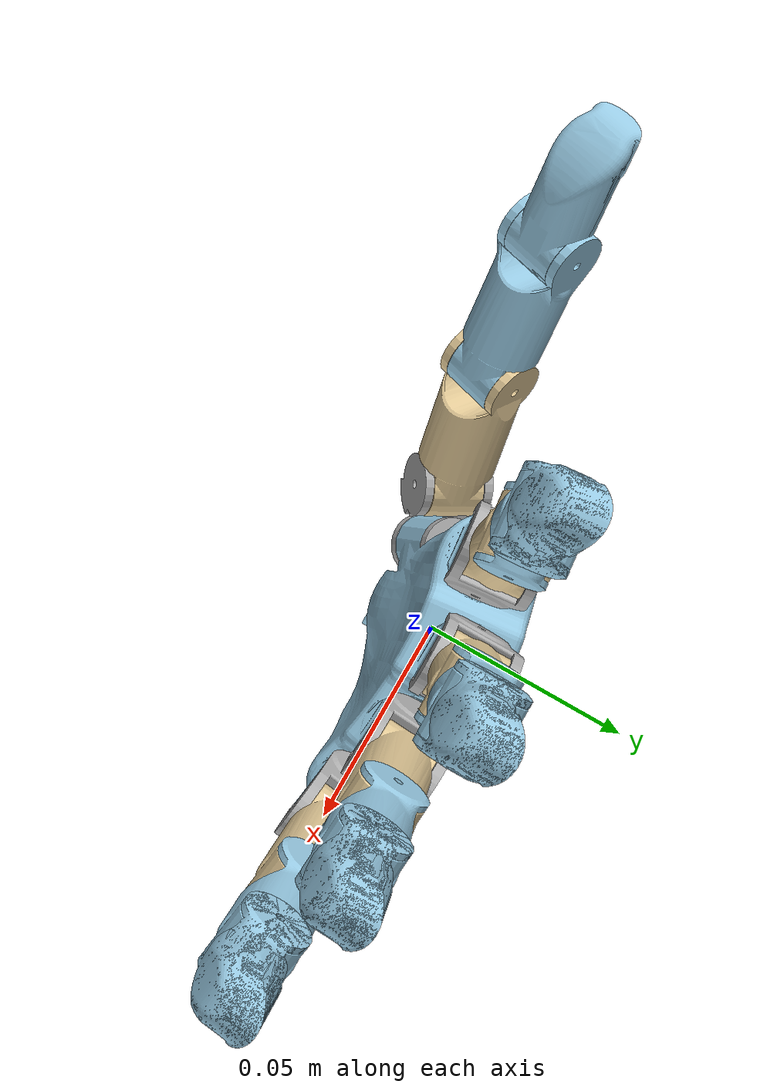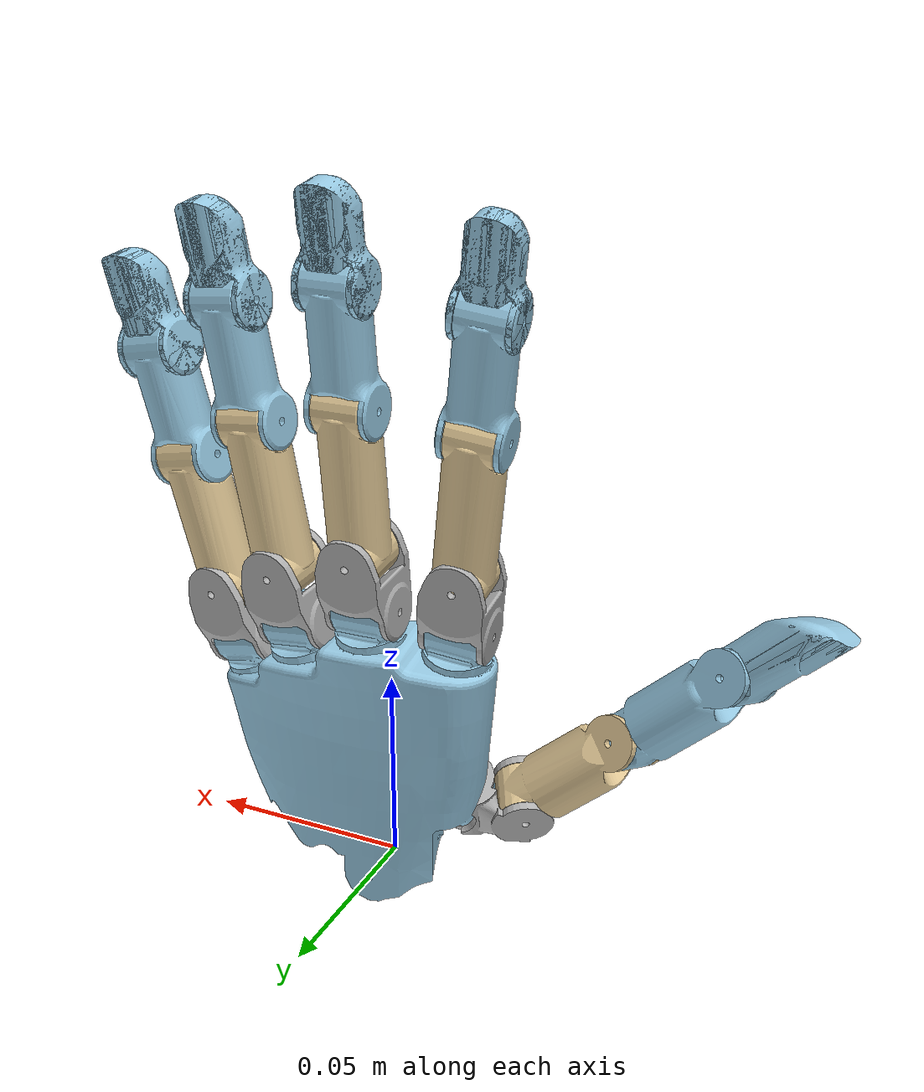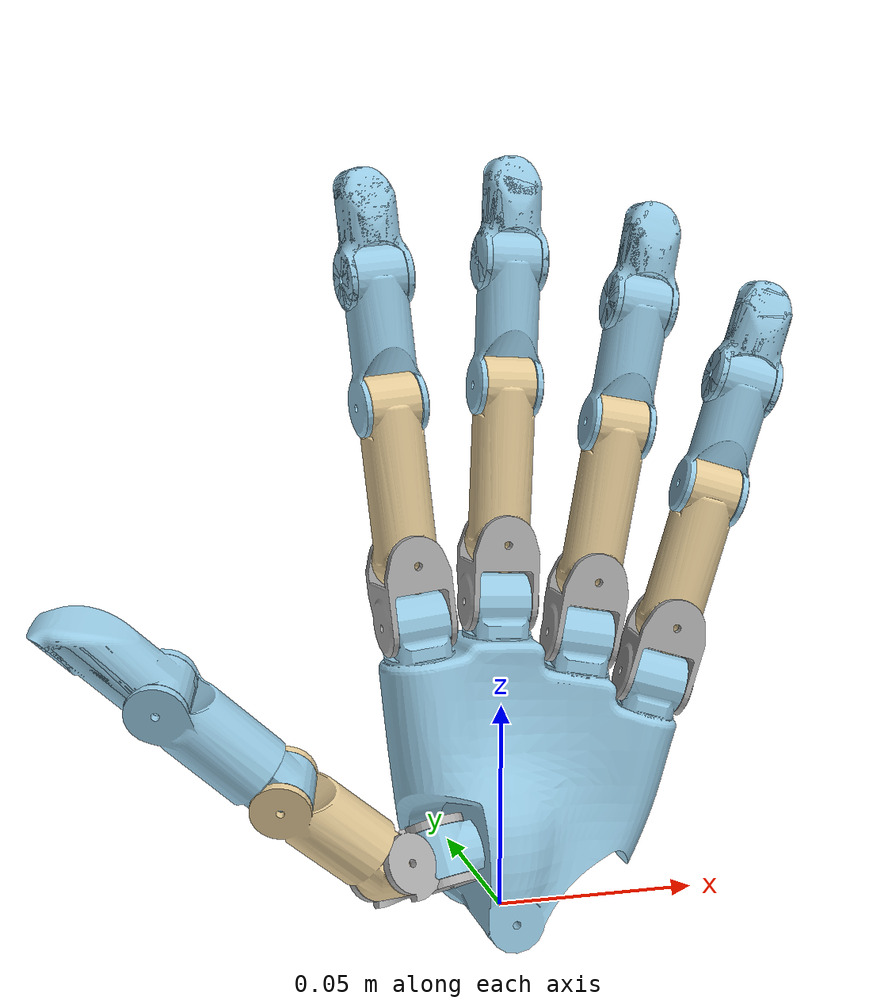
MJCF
<mujoco model="wujihand-left">
  <compiler angle="radian" meshdir="../meshes/left/" />

  <option jacobian="sparse" integrator="RK4" timestep="0.002" solver="Newton" iterations="50" tolerance="1e-10" /><default><joint armature="0.0002" damping="0.0" /></default><asset>
    <mesh name="l_wrist" content_type="model/stl" file="l_wrist.STL" />
    <mesh name="l_thumb_proximal" content_type="model/stl" file="l_thumb_proximal.STL" />
    <mesh name="l_thumb_proximal_abd" content_type="model/stl" file="l_thumb_proximal_abd.STL" />
    <mesh name="l_thumb_middle" content_type="model/stl" file="l_thumb_middle.STL" />
    <mesh name="l_thumb_distal" content_type="model/stl" file="l_thumb_distal.STL" />
    <mesh name="l_thumb_tip" content_type="model/stl" file="l_thumb_tip.STL" />
    <mesh name="l_index_finger_proximal" content_type="model/stl" file="l_index_finger_proximal.STL" />
    <mesh name="l_index_finger_proximal_abd" content_type="model/stl" file="l_index_finger_proximal_abd.STL" />
    <mesh name="l_index_finger_middle" content_type="model/stl" file="l_index_finger_middle.STL" />
    <mesh name="l_index_finger_distal" content_type="model/stl" file="l_index_finger_distal.STL" />
    <mesh name="l_index_finger_tip" content_type="model/stl" file="l_index_finger_tip.STL" />
    <mesh name="l_middle_finger_proximal" content_type="model/stl" file="l_middle_finger_proximal.STL" />
    <mesh name="l_middle_finger_proximal_abd" content_type="model/stl" file="l_middle_finger_proximal_abd.STL" />
    <mesh name="l_middle_finger_middle" content_type="model/stl" file="l_middle_finger_middle.STL" />
    <mesh name="l_middle_finger_distal" content_type="model/stl" file="l_middle_finger_distal.STL" />
    <mesh name="l_middle_finger_tip" content_type="model/stl" file="l_middle_finger_tip.STL" />
    <mesh name="l_ring_finger_proximal" content_type="model/stl" file="l_ring_finger_proximal.STL" />
    <mesh name="l_ring_finger_proximal_abd" content_type="model/stl" file="l_ring_finger_proximal_abd.STL" />
    <mesh name="l_ring_finger_middle" content_type="model/stl" file="l_ring_finger_middle.STL" />
    <mesh name="l_ring_finger_distal" content_type="model/stl" file="l_ring_finger_distal.STL" />
    <mesh name="l_ring_finger_tip" content_type="model/stl" file="l_ring_finger_tip.STL" />
    <mesh name="l_pinky_proximal" content_type="model/stl" file="l_pinky_proximal.STL" />
    <mesh name="l_pinky_proximal_abd" content_type="model/stl" file="l_pinky_proximal_abd.STL" />
    <mesh name="l_pinky_middle" content_type="model/stl" file="l_pinky_middle.STL" />
    <mesh name="l_pinky_distal" content_type="model/stl" file="l_pinky_distal.STL" />
    <mesh name="l_pinky_tip" content_type="model/stl" file="l_pinky_tip.STL" />
  </asset>

  <worldbody>
    <body name="l_base"><inertial pos="0.00464906657736 0.00350268157047 0.035514253197" mass="0.16914" quat="0.08877167 0.69431677 0.71378173 0.02365290" diaginertia="1.13546004e-04 7.26656655e-05 5.63417832e-05" /><geom quat="0 1 0 0" type="mesh" contype="0" conaffinity="0" group="1" density="0" rgba="0.6 0.8 0.9 1" mesh="l_wrist" />
    <geom quat="0 1 0 0" type="mesh" rgba="0.6 0.8 0.9 1" mesh="l_wrist" contype="1" conaffinity="1" />
    <body name="l_thumb_proximal" pos="-0.01666 -0.0081297 0.017017" quat="-0.709621 0.286757 -0.641142 0.0560762">
      <inertial pos="0.000791225 0.00178311 -0.00701986" quat="0.936928 0.0292296 -0.0818877 0.338536" mass="0.0075" diaginertia="5.88317e-07 5.60245e-07 4.46152e-07" />
      <joint name="l_thumb_cmc_flex" pos="0 0 0" axis="-1 0 0" range="-1.187 1.291" actuatorfrcrange="-0.6 0.6" armature="0.0005" />
      <geom type="mesh" contype="0" conaffinity="0" group="1" density="0" rgba="0.7 0.7 0.7 1" mesh="l_thumb_proximal" />
      <geom type="mesh" rgba="0.7 0.7 0.7 1" mesh="l_thumb_proximal" contype="0" conaffinity="0" />
      <body name="l_thumb_proximal_abd" pos="0.00025789 0.00063167 -0.014161" quat="0.934711 -0.0919289 0.342519 0.0233666">
        <inertial pos="1.22552e-05 -4.92144e-06 -0.0135605" quat="0.846494 -0.0022293 -0.00121984 0.532392" mass="0.0248" diaginertia="3.23916e-06 3.13503e-06 9.13223e-07" />
        <joint name="l_thumb_cmc_abd" pos="0 0 0" axis="0 1 0" range="-1.484 0.698" actuatorfrcrange="-0.6 0.6" armature="0.0005" />
        <geom type="mesh" contype="0" conaffinity="0" group="1" density="0" rgba="0.9 0.8 0.6 1" mesh="l_thumb_proximal_abd" />
        <geom type="mesh" rgba="0.9 0.8 0.6 1" mesh="l_thumb_proximal_abd" contype="2" conaffinity="2" />
        <body name="l_thumb_middle" pos="-4.3136e-05 2.4905e-05 -0.033496" quat="0.965006 0.0112895 0.0421329 -0.258573">
          <inertial pos="-2.70399e-07 -1.7747e-07 -0.0148152" quat="0.706187 1.46548e-06 8.62296e-06 0.708025" mass="0.0165" diaginertia="2.35726e-06 2.30828e-06 6.12078e-07" />
          <joint name="l_thumb_mcp" pos="0 0 0" axis="-1 0 0" range="-1.047 1.57" actuatorfrcrange="-0.3 0.3" />
          <geom type="mesh" contype="0" conaffinity="0" group="1" density="0" rgba="0.6 0.8 0.9 1" mesh="l_thumb_middle" />
          <geom type="mesh" rgba="0.6 0.8 0.9 1" mesh="l_thumb_middle" contype="1" conaffinity="1" />
          <body name="l_thumb_distal" pos="0 0 -0.036">
            <inertial pos="-6.28894e-05 7.75172e-05 -0.0109189" quat="0.975066 0.0348132 0.0182874 -0.218402" mass="0.0206" diaginertia="2.18471e-06 2.17337e-06 5.56902e-07" />
            <joint name="l_thumb_ip" pos="0 0 0" axis="-1 0 0" range="-1.047 1.57" actuatorfrcrange="-0.3 0.3" />
            <geom type="mesh" contype="0" conaffinity="0" group="1" density="0" rgba="0.6 0.8 0.9 1" mesh="l_thumb_distal" />
            <geom type="mesh" rgba="0.6 0.8 0.9 1" mesh="l_thumb_distal" contype="1" conaffinity="1" />
            <geom pos="0 0.00031573 -0.027701" quat="-3.6683e-06 1.89747e-07 -0.051657 0.998665" type="mesh" contype="0" conaffinity="0" group="1" density="0" rgba="0.6 0.8 0.9 1" mesh="l_thumb_tip" />
            <geom pos="0 0.00031573 -0.027701" quat="-3.6683e-06 1.89747e-07 -0.051657 0.998665" type="mesh" rgba="0.6 0.8 0.9 1" mesh="l_thumb_tip" contype="1" conaffinity="1" />
          </body>
        </body>
      </body>
    </body>
    <body name="l_index_finger_proximal" pos="-0.020353 0.0033601 0.070679" quat="-0.0530009 0.0489857 -0.997267 0.0158347">
      <inertial pos="-1.83202e-09 0.00178137 -0.00760139" quat="0.999275 0.0380628 0 0" mass="0.0032" diaginertia="2.53706e-07 2.50651e-07 2.17493e-07" />
      <joint name="l_index_finger_mcp_flex" pos="0 0 0" axis="-1 0 0" range="-1.047 1.57" actuatorfrcrange="-2 2" armature="0.0005" />
      <geom type="mesh" contype="0" conaffinity="0" group="1" density="0" rgba="0.7 0.7 0.7 1" mesh="l_index_finger_proximal" />
      <geom type="mesh" rgba="0.7 0.7 0.7 1" mesh="l_index_finger_proximal" contype="0" conaffinity="0" />
      <body name="l_index_finger_proximal_abd" pos="0 0.001201 -0.0145">
        <inertial pos="-8.04735e-08 -7.30405e-07 -0.0187994" quat="0.983237 1.60594e-05 -3.84548e-06 0.18233" mass="0.033" diaginertia="6.82962e-06 6.82929e-06 8.90202e-07" />
        <joint name="l_index_finger_mcp_abd" pos="0 0 0" axis="0 1 0" range="-0.698 0.698" actuatorfrcrange="-0.2 0.2" />
        <geom type="mesh" contype="0" conaffinity="0" group="1" density="0" rgba="0.9 0.8 0.6 1" mesh="l_index_finger_proximal_abd" />
        <geom type="mesh" rgba="0.9 0.8 0.6 1" mesh="l_index_finger_proximal_abd" contype="2" conaffinity="2" />
        <body name="l_index_finger_middle" pos="0 0 -0.0376">
          <inertial pos="5.07335e-08 0.000247887 -0.0190348" quat="0.707235 -0.0108069 0.0107958 0.706814" mass="0.0165" diaginertia="1.92861e-06 1.87201e-06 5.07825e-07" />
          <joint name="l_index_finger_pip" pos="0 0 0" axis="-1 0 0" range="-1.047 2.094" actuatorfrcrange="-0.3 0.3" />
          <geom type="mesh" contype="0" conaffinity="0" group="1" density="0" rgba="0.6 0.8 0.9 1" mesh="l_index_finger_middle" />
          <geom type="mesh" rgba="0.6 0.8 0.9 1" mesh="l_index_finger_middle" contype="1" conaffinity="1" />
          <body name="l_index_finger_distal" pos="0 0 -0.0295">
            <inertial pos="-0.000309785 0.00180539 -0.0114392" quat="0.719554 0.0750724 -0.0644902 0.687348" mass="0.01718" diaginertia="1.37358e-06 1.26339e-06 5.15141e-07" />
            <joint name="l_index_finger_dip" pos="0 0 0" axis="-1 0 0" range="-1.047 1.57" actuatorfrcrange="-0.3 0.3" />
            <geom type="mesh" contype="0" conaffinity="0" group="1" density="0" rgba="0.6 0.8 0.9 1" mesh="l_index_finger_distal" />
            <geom type="mesh" rgba="0.6 0.8 0.9 1" mesh="l_index_finger_distal" contype="1" conaffinity="1" />
            <geom pos="0 0.0016722 -0.025" quat="1 0 0 0" type="mesh" contype="0" conaffinity="0" group="1" density="0" rgba="0.6 0.8 0.9 1" mesh="l_index_finger_tip" />
            <geom pos="0 0.0016722 -0.025" quat="1 0 0 0" type="mesh" rgba="0.6 0.8 0.9 1" mesh="l_index_finger_tip" contype="1" conaffinity="1" />
          </body>
        </body>
      </body>
    </body>
    <body name="l_middle_finger_proximal" pos="0.0014735 0.0083399 0.073903" quat="-0.021927 -3.12917e-05 0.999612 -0.0172059">
      <inertial pos="-1.83202e-09 0.00178137 -0.00760139" quat="0.999275 0.0380628 0 0" mass="0.0032" diaginertia="2.53706e-07 2.50651e-07 2.17493e-07" />
      <joint name="l_middle_finger_mcp_flex" pos="0 0 0" axis="-1 0 0" range="-1.047 1.57" actuatorfrcrange="-2 2" armature="0.0005" />
      <geom type="mesh" contype="0" conaffinity="0" group="1" density="0" rgba="0.7 0.7 0.7 1" mesh="l_middle_finger_proximal" />
      <geom type="mesh" rgba="0.7 0.7 0.7 1" mesh="l_middle_finger_proximal" contype="0" conaffinity="0" />
      <body name="l_middle_finger_proximal_abd" pos="0 0.001201 -0.0145">
        <inertial pos="-8.04735e-08 -7.30405e-07 -0.0187994" quat="0.983237 1.60594e-05 -3.84548e-06 0.18233" mass="0.033" diaginertia="6.82962e-06 6.82929e-06 8.90202e-07" />
        <joint name="l_middle_finger_mcp_abd" pos="0 0 0" axis="0 1 0" range="-0.698 0.698" actuatorfrcrange="-0.2 0.2" />
        <geom type="mesh" contype="0" conaffinity="0" group="1" density="0" rgba="0.9 0.8 0.6 1" mesh="l_middle_finger_proximal_abd" />
        <geom type="mesh" rgba="0.9 0.8 0.6 1" mesh="l_middle_finger_proximal_abd" contype="2" conaffinity="2" />
        <body name="l_middle_finger_middle" pos="0 0 -0.0376">
          <inertial pos="5.07335e-08 0.000247887 -0.0190348" quat="0.707235 -0.0108069 0.0107958 0.706814" mass="0.0165" diaginertia="1.92861e-06 1.87201e-06 5.07825e-07" />
          <joint name="l_middle_finger_pip" pos="0 0 0" axis="-1 0 0" range="-1.047 2.094" actuatorfrcrange="-0.3 0.3" />
          <geom type="mesh" contype="0" conaffinity="0" group="1" density="0" rgba="0.6 0.8 0.9 1" mesh="l_middle_finger_middle" />
          <geom type="mesh" rgba="0.6 0.8 0.9 1" mesh="l_middle_finger_middle" contype="1" conaffinity="1" />
          <body name="l_middle_finger_distal" pos="0 0 -0.0295">
            <inertial pos="-0.000309785 0.00180539 -0.0114392" quat="0.719554 0.0750724 -0.0644902 0.687348" mass="0.01718" diaginertia="1.37358e-06 1.26339e-06 5.15141e-07" />
            <joint name="l_middle_finger_dip" pos="0 0 0" axis="-1 0 0" range="-1.047 1.57" actuatorfrcrange="-0.3 0.3" />
            <geom type="mesh" contype="0" conaffinity="0" group="1" density="0" rgba="0.6 0.8 0.9 1" mesh="l_middle_finger_distal" />
            <geom type="mesh" rgba="0.6 0.8 0.9 1" mesh="l_middle_finger_distal" contype="1" conaffinity="1" />
            <geom pos="0 0.0016722 -0.025" quat="1 0 0 0" type="mesh" contype="0" conaffinity="0" group="1" density="0" rgba="0.6 0.8 0.9 1" mesh="l_middle_finger_tip" />
            <geom pos="0 0.0016722 -0.025" quat="1 0 0 0" type="mesh" rgba="0.6 0.8 0.9 1" mesh="l_middle_finger_tip" contype="1" conaffinity="1" />
          </body>
        </body>
      </body>
    </body>
    <body name="l_ring_finger_proximal" pos="0.021879 0.0056256 0.064714" quat="-0.0873369 0.0334119 0.995596 -0.00668093">
      <inertial pos="-1.83202e-09 0.00178137 -0.00760139" quat="0.999275 0.0380628 0 0" mass="0.0032" diaginertia="2.53706e-07 2.50651e-07 2.17493e-07" />
      <joint name="l_ring_finger_mcp_flex" pos="0 0 0" axis="-1 0 0" range="-1.047 1.57" actuatorfrcrange="-2 2" armature="0.0005" />
      <geom type="mesh" contype="0" conaffinity="0" group="1" density="0" rgba="0.7 0.7 0.7 1" mesh="l_ring_finger_proximal" />
      <geom type="mesh" rgba="0.7 0.7 0.7 1" mesh="l_ring_finger_proximal" contype="0" conaffinity="0" />
      <body name="l_ring_finger_proximal_abd" pos="0 0.001201 -0.0145">
        <inertial pos="-8.04735e-08 -7.30405e-07 -0.0187994" quat="0.983237 1.60594e-05 -3.84548e-06 0.18233" mass="0.033" diaginertia="6.82962e-06 6.82929e-06 8.90202e-07" />
        <joint name="l_ring_finger_mcp_abd" pos="0 0 0" axis="0 1 0" range="-0.698 0.698" actuatorfrcrange="-0.2 0.2" />
        <geom type="mesh" contype="0" conaffinity="0" group="1" density="0" rgba="0.9 0.8 0.6 1" mesh="l_ring_finger_proximal_abd" />
        <geom type="mesh" rgba="0.9 0.8 0.6 1" mesh="l_ring_finger_proximal_abd" contype="2" conaffinity="2" />
        <body name="l_ring_finger_middle" pos="0 0 -0.0376">
          <inertial pos="5.07335e-08 0.000247887 -0.0190348" quat="0.707235 -0.0108069 0.0107958 0.706814" mass="0.0165" diaginertia="1.92861e-06 1.87201e-06 5.07825e-07" />
          <joint name="l_ring_finger_pip" pos="0 0 0" axis="-1 0 0" range="-1.047 2.094" actuatorfrcrange="-0.3 0.3" />
          <geom type="mesh" contype="0" conaffinity="0" group="1" density="0" rgba="0.6 0.8 0.9 1" mesh="l_ring_finger_middle" />
          <geom type="mesh" rgba="0.6 0.8 0.9 1" mesh="l_ring_finger_middle" contype="1" conaffinity="1" />
          <body name="l_ring_finger_distal" pos="0 0 -0.0295">
            <inertial pos="-0.000309785 0.00180539 -0.0114392" quat="0.719554 0.0750724 -0.0644902 0.687348" mass="0.01718" diaginertia="1.37358e-06 1.26339e-06 5.15141e-07" />
            <joint name="l_ring_finger_dip" pos="0 0 0" axis="-1 0 0" range="-1.047 1.57" actuatorfrcrange="-0.3 0.3" />
            <geom type="mesh" contype="0" conaffinity="0" group="1" density="0" rgba="0.6 0.8 0.9 1" mesh="l_ring_finger_distal" />
            <geom type="mesh" rgba="0.6 0.8 0.9 1" mesh="l_ring_finger_distal" contype="1" conaffinity="1" />
            <geom pos="0 0.0016722 -0.025" quat="1 0 0 0" type="mesh" contype="0" conaffinity="0" group="1" density="0" rgba="0.6 0.8 0.9 1" mesh="l_ring_finger_tip" />
            <geom pos="0 0.0016722 -0.025" quat="1 0 0 0" type="mesh" rgba="0.6 0.8 0.9 1" mesh="l_ring_finger_tip" contype="1" conaffinity="1" />
          </body>
        </body>
      </body>
    </body>
    <body name="l_pinky_proximal" pos="0.039145 0.00076138 0.054041" quat="-0.14036 0.0669174 0.987834 0.00224079">
      <inertial pos="2.12813e-07 0.00178136 -0.00760145" quat="0.999275 0.0380616 -2.02315e-05 -7.70603e-07" mass="0.0032" diaginertia="2.537e-07 2.50649e-07 2.17493e-07" />
      <joint name="l_pinky_mcp_flex" pos="0 0 0" axis="-1 0 0" range="-1.047 1.57" actuatorfrcrange="-2 2" armature="0.0005" />
      <geom type="mesh" contype="0" conaffinity="0" group="1" density="0" rgba="0.7 0.7 0.7 1" mesh="l_pinky_proximal" />
      <geom type="mesh" rgba="0.7 0.7 0.7 1" mesh="l_pinky_proximal" contype="0" conaffinity="0" />
      <body name="l_pinky_proximal_abd" pos="0 0.001201 -0.0145">
        <inertial pos="-1.55648e-06 -5.45405e-07 -0.016785" quat="0.762165 7.76805e-06 -3.02125e-05 0.647383" mass="0.033" diaginertia="5.84029e-06 5.83952e-06 8.87646e-07" />
        <joint name="l_pinky_mcp_abd" pos="0 0 0" axis="0 1 0" range="-0.698 0.698" actuatorfrcrange="-0.2 0.2" />
        <geom type="mesh" contype="0" conaffinity="0" group="1" density="0" rgba="0.9 0.8 0.6 1" mesh="l_pinky_proximal_abd" />
        <geom type="mesh" rgba="0.9 0.8 0.6 1" mesh="l_pinky_proximal_abd" contype="2" conaffinity="2" />
        <body name="l_pinky_middle" pos="-0.0001 0 -0.0336">
          <inertial pos="3.23236e-07 0.000264491 -0.0178807" quat="0.707241 -0.0112918 0.0112863 0.706792" mass="0.0165" diaginertia="1.8076e-06 1.74345e-06 5.13353e-07" />
          <joint name="l_pinky_pip" pos="0 0 0" axis="-1 0 0" range="-1.047 2.094" actuatorfrcrange="-0.3 0.3" />
          <geom type="mesh" contype="0" conaffinity="0" group="1" density="0" rgba="0.6 0.8 0.9 1" mesh="l_pinky_middle" />
          <geom type="mesh" rgba="0.6 0.8 0.9 1" mesh="l_pinky_middle" contype="1" conaffinity="1" />
          <body name="l_pinky_distal" pos="0 0 -0.0275">
            <inertial pos="-0.00030939 0.000750236 -0.0120757" quat="0.717842 0.0379403 -0.0367939 0.694197" mass="0.01718" diaginertia="1.25451e-06 1.12901e-06 5.30937e-07" />
            <joint name="l_pinky_dip" pos="0 0 0" axis="-1 0 0" range="-1.047 1.57" actuatorfrcrange="-0.3 0.3" />
            <geom type="mesh" contype="0" conaffinity="0" group="1" density="0" rgba="0.6 0.8 0.9 1" mesh="l_pinky_distal" />
            <geom type="mesh" rgba="0.6 0.8 0.9 1" mesh="l_pinky_distal" contype="1" conaffinity="1" />
            <geom pos="0 0.0016722 -0.025" quat="1 0 0 0" type="mesh" contype="0" conaffinity="0" group="1" density="0" rgba="0.6 0.8 0.9 1" mesh="l_pinky_tip" />
            <geom pos="0 0.0016722 -0.025" quat="1 0 0 0" type="mesh" rgba="0.6 0.8 0.9 1" mesh="l_pinky_tip" contype="1" conaffinity="1" />
          </body>
        </body>
      </body>
    </body>
  </body></worldbody>
<actuator>
    <position name="left_finger1_joint1_actuator" joint="l_thumb_cmc_flex" kp="0.40844710645048043" kv="0.020882010257063675" ctrlrange="-1.187 1.291" forcerange="-0.6 0.6" />
    <position name="left_finger1_joint2_actuator" joint="l_thumb_cmc_abd" kp="0.6858601063643346" kv="0.030610939996373314" ctrlrange="-1.484 0.698" forcerange="-0.6 0.6" />
    <position name="left_finger1_joint3_actuator" joint="l_thumb_mcp" kp="0.2391112196099482" kv="0.010181475050560962" ctrlrange="-1.047 1.57" forcerange="-0.3 0.3" />
    <position name="left_finger1_joint4_actuator" joint="l_thumb_ip" kp="0.20736128319711747" kv="0.00909698844675045" ctrlrange="-1.047 1.57" forcerange="-0.3 0.3" />
    <position name="left_finger2_joint1_actuator" joint="l_index_finger_mcp_flex" kp="0.37352218155860073" kv="0.01882274330029718" ctrlrange="-1.047 1.57" forcerange="-2 2" />
    <position name="left_finger2_joint2_actuator" joint="l_index_finger_mcp_abd" kp="0.45592448909027794" kv="0.019798167597016643" ctrlrange="-0.698 0.698" forcerange="-0.2 0.2" />
    <position name="left_finger2_joint3_actuator" joint="l_index_finger_pip" kp="0.24368366649522863" kv="0.010477031953162727" ctrlrange="-1.047 2.094" forcerange="-0.3 0.3" />
    <position name="left_finger2_joint4_actuator" joint="l_index_finger_dip" kp="0.18026971340925335" kv="0.008240212147903584" ctrlrange="-1.047 1.57" forcerange="-0.3 0.3" />
    <position name="left_finger3_joint1_actuator" joint="l_middle_finger_mcp_flex" kp="0.3687093483646485" kv="0.01848622487024593" ctrlrange="-1.047 1.57" forcerange="-2 2" />
    <position name="left_finger3_joint2_actuator" joint="l_middle_finger_mcp_abd" kp="0.4164253443634641" kv="0.018032947229953678" ctrlrange="-0.698 0.698" forcerange="-0.2 0.2" />
    <position name="left_finger3_joint3_actuator" joint="l_middle_finger_pip" kp="0.22218607502059182" kv="0.009592200014076666" ctrlrange="-1.047 2.094" forcerange="-0.3 0.3" />
    <position name="left_finger3_joint4_actuator" joint="l_middle_finger_dip" kp="0.19427606072023446" kv="0.009152994605972402" ctrlrange="-1.047 1.57" forcerange="-0.3 0.3" />
    <position name="left_finger4_joint1_actuator" joint="l_ring_finger_mcp_flex" kp="0.35718151495111794" kv="0.018376606800780005" ctrlrange="-1.047 1.57" forcerange="-2 2" />
    <position name="left_finger4_joint2_actuator" joint="l_ring_finger_mcp_abd" kp="0.42977315313086895" kv="0.01867700966212433" ctrlrange="-0.698 0.698" forcerange="-0.2 0.2" />
    <position name="left_finger4_joint3_actuator" joint="l_ring_finger_pip" kp="0.24930151196247122" kv="0.01059512121009555" ctrlrange="-1.047 2.094" forcerange="-0.3 0.3" />
    <position name="left_finger4_joint4_actuator" joint="l_ring_finger_dip" kp="0.2285032688178066" kv="0.009917602877441107" ctrlrange="-1.047 1.57" forcerange="-0.3 0.3" />
    <position name="left_finger5_joint1_actuator" joint="l_pinky_mcp_flex" kp="0.3655325975433942" kv="0.018616960278988272" ctrlrange="-1.047 1.57" forcerange="-2 2" />
    <position name="left_finger5_joint2_actuator" joint="l_pinky_mcp_abd" kp="0.41393113081120425" kv="0.018732177029667153" ctrlrange="-0.698 0.698" forcerange="-0.2 0.2" />
    <position name="left_finger5_joint3_actuator" joint="l_pinky_pip" kp="0.22729367621965954" kv="0.00951005441616486" ctrlrange="-1.047 2.094" forcerange="-0.3 0.3" />
    <position name="left_finger5_joint4_actuator" joint="l_pinky_dip" kp="0.1964723550341816" kv="0.009017295241756363" ctrlrange="-1.047 1.57" forcerange="-0.3 0.3" />
  </actuator>
</mujoco>
